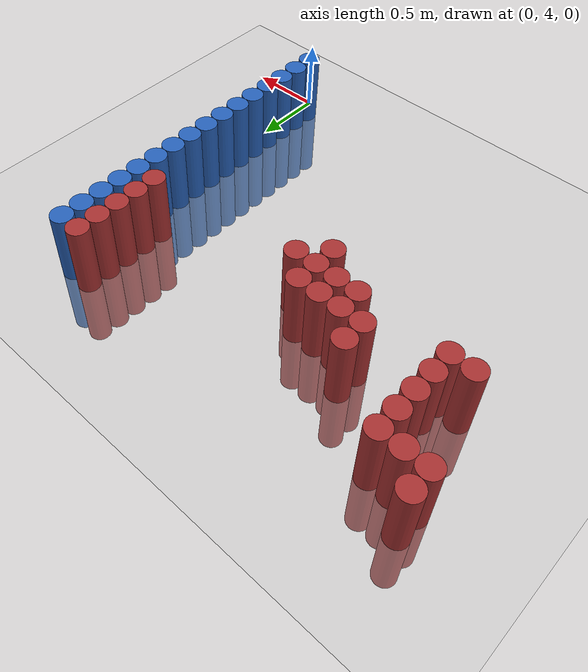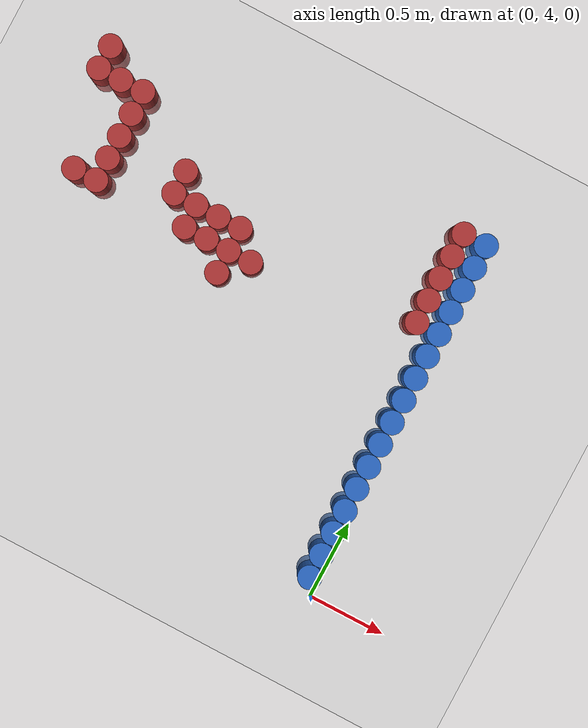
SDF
<sdf version="1.6">
 <world name="default">
  <model name="ground_plane">
   <static>1</static>
   <link name="link">
    <collision name="collision">
     <geometry><plane><normal>0 0 1</normal><size>100 100</size></plane></geometry>
     <surface><friction><ode><mu>100</mu><mu2>50</mu2></ode></friction></surface>
    </collision>
    <visual name="visual">
     <cast_shadows>0</cast_shadows>
     <geometry><plane><normal>0 0 1</normal><size>100 100</size></plane></geometry>
     <material>
      <script><uri>file://media/materials/scripts/gazebo.material</uri><name>Gazebo/Grey</name></script>
     </material>
    </visual>
   </link>
  </model>
  <model name="unit_cylinder_82">
   <static>1</static>
   <pose>-0.075000 4.125000 0.000000 0.000000 0.000000 0.000000</pose>
   <link name="link">
    <inertial>
     <mass>1</mass>
     <inertia><ixx>0.145833</ixx><ixy>0</ixy><ixz>0</ixz><iyy>0.145833</iyy><iyz>0</iyz><izz>0.125</izz></inertia>
    </inertial>
    <collision name="collision">
     <geometry><cylinder><radius>0.075000</radius><length>1</length></cylinder></geometry>
    </collision>
    <visual name="visual">
     <geometry><cylinder><radius>0.075000</radius><length>1</length></cylinder></geometry>
     <material>
      <ambient>0.152000 0.379000 0.720000 1</ambient>
      <diffuse>0.152000 0.379000 0.720000 1</diffuse>
     </material>
     <material>
      <script><name>Gazebo/Grey</name><uri>file://media/materials/scripts/gazebo.material</uri></script>
     </material>
    </visual>
    <sensor name="sensor_contact" type="contact"><contact><collision>collision</collision></contact></sensor>
   </link>
   <plugin filename="gz-sim-touchplugin-system" name="gz::sim::systems::TouchPlugin">
    <target>robot</target>
    <namespace>robot</namespace>
    <time>0.001</time>
    <enabled>true</enabled>
   </plugin>
  </model>
  <model name="unit_cylinder_84">
   <static>1</static>
   <pose>-0.075000 4.275000 0.000000 0.000000 0.000000 0.000000</pose>
   <link name="link">
    <inertial>
     <mass>1</mass>
     <inertia><ixx>0.145833</ixx><ixy>0</ixy><ixz>0</ixz><iyy>0.145833</iyy><iyz>0</iyz><izz>0.125</izz></inertia>
    </inertial>
    <collision name="collision">
     <geometry><cylinder><radius>0.075000</radius><length>1</length></cylinder></geometry>
    </collision>
    <visual name="visual">
     <geometry><cylinder><radius>0.075000</radius><length>1</length></cylinder></geometry>
     <material>
      <ambient>0.152000 0.379000 0.720000 1</ambient>
      <diffuse>0.152000 0.379000 0.720000 1</diffuse>
     </material>
     <material>
      <script><name>Gazebo/Grey</name><uri>file://media/materials/scripts/gazebo.material</uri></script>
     </material>
    </visual>
    <sensor name="sensor_contact" type="contact"><contact><collision>collision</collision></contact></sensor>
   </link>
   <plugin filename="gz-sim-touchplugin-system" name="gz::sim::systems::TouchPlugin">
    <target>robot</target>
    <namespace>robot</namespace>
    <time>0.001</time>
    <enabled>true</enabled>
   </plugin>
  </model>
  <model name="unit_cylinder_86">
   <static>1</static>
   <pose>-0.075000 4.425000 0.000000 0.000000 0.000000 0.000000</pose>
   <link name="link">
    <inertial>
     <mass>1</mass>
     <inertia><ixx>0.145833</ixx><ixy>0</ixy><ixz>0</ixz><iyy>0.145833</iyy><iyz>0</iyz><izz>0.125</izz></inertia>
    </inertial>
    <collision name="collision">
     <geometry><cylinder><radius>0.075000</radius><length>1</length></cylinder></geometry>
    </collision>
    <visual name="visual">
     <geometry><cylinder><radius>0.075000</radius><length>1</length></cylinder></geometry>
     <material>
      <ambient>0.152000 0.379000 0.720000 1</ambient>
      <diffuse>0.152000 0.379000 0.720000 1</diffuse>
     </material>
     <material>
      <script><name>Gazebo/Grey</name><uri>file://media/materials/scripts/gazebo.material</uri></script>
     </material>
    </visual>
    <sensor name="sensor_contact" type="contact"><contact><collision>collision</collision></contact></sensor>
   </link>
   <plugin filename="gz-sim-touchplugin-system" name="gz::sim::systems::TouchPlugin">
    <target>robot</target>
    <namespace>robot</namespace>
    <time>0.001</time>
    <enabled>true</enabled>
   </plugin>
  </model>
  <model name="unit_cylinder_88">
   <static>1</static>
   <pose>-0.075000 4.575000 0.000000 0.000000 0.000000 0.000000</pose>
   <link name="link">
    <inertial>
     <mass>1</mass>
     <inertia><ixx>0.145833</ixx><ixy>0</ixy><ixz>0</ixz><iyy>0.145833</iyy><iyz>0</iyz><izz>0.125</izz></inertia>
    </inertial>
    <collision name="collision">
     <geometry><cylinder><radius>0.075000</radius><length>1</length></cylinder></geometry>
    </collision>
    <visual name="visual">
     <geometry><cylinder><radius>0.075000</radius><length>1</length></cylinder></geometry>
     <material>
      <ambient>0.152000 0.379000 0.720000 1</ambient>
      <diffuse>0.152000 0.379000 0.720000 1</diffuse>
     </material>
     <material>
      <script><name>Gazebo/Grey</name><uri>file://media/materials/scripts/gazebo.material</uri></script>
     </material>
    </visual>
    <sensor name="sensor_contact" type="contact"><contact><collision>collision</collision></contact></sensor>
   </link>
   <plugin filename="gz-sim-touchplugin-system" name="gz::sim::systems::TouchPlugin">
    <target>robot</target>
    <namespace>robot</namespace>
    <time>0.001</time>
    <enabled>true</enabled>
   </plugin>
  </model>
  <model name="unit_cylinder_90">
   <static>1</static>
   <pose>-0.075000 4.725000 0.000000 0.000000 0.000000 0.000000</pose>
   <link name="link">
    <inertial>
     <mass>1</mass>
     <inertia><ixx>0.145833</ixx><ixy>0</ixy><ixz>0</ixz><iyy>0.145833</iyy><iyz>0</iyz><izz>0.125</izz></inertia>
    </inertial>
    <collision name="collision">
     <geometry><cylinder><radius>0.075000</radius><length>1</length></cylinder></geometry>
    </collision>
    <visual name="visual">
     <geometry><cylinder><radius>0.075000</radius><length>1</length></cylinder></geometry>
     <material>
      <ambient>0.152000 0.379000 0.720000 1</ambient>
      <diffuse>0.152000 0.379000 0.720000 1</diffuse>
     </material>
     <material>
      <script><name>Gazebo/Grey</name><uri>file://media/materials/scripts/gazebo.material</uri></script>
     </material>
    </visual>
    <sensor name="sensor_contact" type="contact"><contact><collision>collision</collision></contact></sensor>
   </link>
   <plugin filename="gz-sim-touchplugin-system" name="gz::sim::systems::TouchPlugin">
    <target>robot</target>
    <namespace>robot</namespace>
    <time>0.001</time>
    <enabled>true</enabled>
   </plugin>
  </model>
  <model name="unit_cylinder_92">
   <static>1</static>
   <pose>-0.075000 4.875000 0.000000 0.000000 0.000000 0.000000</pose>
   <link name="link">
    <inertial>
     <mass>1</mass>
     <inertia><ixx>0.145833</ixx><ixy>0</ixy><ixz>0</ixz><iyy>0.145833</iyy><iyz>0</iyz><izz>0.125</izz></inertia>
    </inertial>
    <collision name="collision">
     <geometry><cylinder><radius>0.075000</radius><length>1</length></cylinder></geometry>
    </collision>
    <visual name="visual">
     <geometry><cylinder><radius>0.075000</radius><length>1</length></cylinder></geometry>
     <material>
      <ambient>0.152000 0.379000 0.720000 1</ambient>
      <diffuse>0.152000 0.379000 0.720000 1</diffuse>
     </material>
     <material>
      <script><name>Gazebo/Grey</name><uri>file://media/materials/scripts/gazebo.material</uri></script>
     </material>
    </visual>
    <sensor name="sensor_contact" type="contact"><contact><collision>collision</collision></contact></sensor>
   </link>
   <plugin filename="gz-sim-touchplugin-system" name="gz::sim::systems::TouchPlugin">
    <target>robot</target>
    <namespace>robot</namespace>
    <time>0.001</time>
    <enabled>true</enabled>
   </plugin>
  </model>
  <model name="unit_cylinder_94">
   <static>1</static>
   <pose>-0.075000 5.025000 0.000000 0.000000 0.000000 0.000000</pose>
   <link name="link">
    <inertial>
     <mass>1</mass>
     <inertia><ixx>0.145833</ixx><ixy>0</ixy><ixz>0</ixz><iyy>0.145833</iyy><iyz>0</iyz><izz>0.125</izz></inertia>
    </inertial>
    <collision name="collision">
     <geometry><cylinder><radius>0.075000</radius><length>1</length></cylinder></geometry>
    </collision>
    <visual name="visual">
     <geometry><cylinder><radius>0.075000</radius><length>1</length></cylinder></geometry>
     <material>
      <ambient>0.152000 0.379000 0.720000 1</ambient>
      <diffuse>0.152000 0.379000 0.720000 1</diffuse>
     </material>
     <material>
      <script><name>Gazebo/Grey</name><uri>file://media/materials/scripts/gazebo.material</uri></script>
     </material>
    </visual>
    <sensor name="sensor_contact" type="contact"><contact><collision>collision</collision></contact></sensor>
   </link>
   <plugin filename="gz-sim-touchplugin-system" name="gz::sim::systems::TouchPlugin">
    <target>robot</target>
    <namespace>robot</namespace>
    <time>0.001</time>
    <enabled>true</enabled>
   </plugin>
  </model>
  <model name="unit_cylinder_210">
   <static>1</static>
   <pose>-2.625000 6.225000 0.000000 0.000000 0.000000 0.000000</pose>
   <link name="link">
    <inertial>
     <mass>1</mass>
     <inertia><ixx>0.145833</ixx><ixy>0</ixy><ixz>0</ixz><iyy>0.145833</iyy><iyz>0</iyz><izz>0.125</izz></inertia>
    </inertial>
    <collision name="collision">
     <geometry><cylinder><radius>0.075000</radius><length>1</length></cylinder></geometry>
    </collision>
    <visual name="visual">
     <geometry><cylinder><radius>0.075000</radius><length>1</length></cylinder></geometry>
     <material>
      <ambient>0.648000 0.192000 0.192000 1</ambient>
      <diffuse>0.648000 0.192000 0.192000 1</diffuse>
     </material>
     <material>
      <script><name>Gazebo/Grey</name><uri>file://media/materials/scripts/gazebo.material</uri></script>
     </material>
    </visual>
    <sensor name="sensor_contact" type="contact"><contact><collision>collision</collision></contact></sensor>
   </link>
   <plugin filename="gz-sim-touchplugin-system" name="gz::sim::systems::TouchPlugin">
    <target>robot</target>
    <namespace>robot</namespace>
    <time>0.001</time>
    <enabled>true</enabled>
   </plugin>
  </model>
  <model name="unit_cylinder_211">
   <static>1</static>
   <pose>-2.625000 6.375000 0.000000 0.000000 0.000000 0.000000</pose>
   <link name="link">
    <inertial>
     <mass>1</mass>
     <inertia><ixx>0.145833</ixx><ixy>0</ixy><ixz>0</ixz><iyy>0.145833</iyy><iyz>0</iyz><izz>0.125</izz></inertia>
    </inertial>
    <collision name="collision">
     <geometry><cylinder><radius>0.075000</radius><length>1</length></cylinder></geometry>
    </collision>
    <visual name="visual">
     <geometry><cylinder><radius>0.075000</radius><length>1</length></cylinder></geometry>
     <material>
      <ambient>0.648000 0.192000 0.192000 1</ambient>
      <diffuse>0.648000 0.192000 0.192000 1</diffuse>
     </material>
     <material>
      <script><name>Gazebo/Grey</name><uri>file://media/materials/scripts/gazebo.material</uri></script>
     </material>
    </visual>
    <sensor name="sensor_contact" type="contact"><contact><collision>collision</collision></contact></sensor>
   </link>
   <plugin filename="gz-sim-touchplugin-system" name="gz::sim::systems::TouchPlugin">
    <target>robot</target>
    <namespace>robot</namespace>
    <time>0.001</time>
    <enabled>true</enabled>
   </plugin>
  </model>
  <model name="unit_cylinder_216">
   <static>1</static>
   <pose>-2.475000 5.625000 0.000000 0.000000 0.000000 0.000000</pose>
   <link name="link">
    <inertial>
     <mass>1</mass>
     <inertia><ixx>0.145833</ixx><ixy>0</ixy><ixz>0</ixz><iyy>0.145833</iyy><iyz>0</iyz><izz>0.125</izz></inertia>
    </inertial>
    <collision name="collision">
     <geometry><cylinder><radius>0.075000</radius><length>1</length></cylinder></geometry>
    </collision>
    <visual name="visual">
     <geometry><cylinder><radius>0.075000</radius><length>1</length></cylinder></geometry>
     <material>
      <ambient>0.648000 0.192000 0.192000 1</ambient>
      <diffuse>0.648000 0.192000 0.192000 1</diffuse>
     </material>
     <material>
      <script><name>Gazebo/Grey</name><uri>file://media/materials/scripts/gazebo.material</uri></script>
     </material>
    </visual>
    <sensor name="sensor_contact" type="contact"><contact><collision>collision</collision></contact></sensor>
   </link>
   <plugin filename="gz-sim-touchplugin-system" name="gz::sim::systems::TouchPlugin">
    <target>robot</target>
    <namespace>robot</namespace>
    <time>0.001</time>
    <enabled>true</enabled>
   </plugin>
  </model>
  <model name="unit_cylinder_217">
   <static>1</static>
   <pose>-2.475000 6.225000 0.000000 0.000000 0.000000 0.000000</pose>
   <link name="link">
    <inertial>
     <mass>1</mass>
     <inertia><ixx>0.145833</ixx><ixy>0</ixy><ixz>0</ixz><iyy>0.145833</iyy><iyz>0</iyz><izz>0.125</izz></inertia>
    </inertial>
    <collision name="collision">
     <geometry><cylinder><radius>0.075000</radius><length>1</length></cylinder></geometry>
    </collision>
    <visual name="visual">
     <geometry><cylinder><radius>0.075000</radius><length>1</length></cylinder></geometry>
     <material>
      <ambient>0.648000 0.192000 0.192000 1</ambient>
      <diffuse>0.648000 0.192000 0.192000 1</diffuse>
     </material>
     <material>
      <script><name>Gazebo/Grey</name><uri>file://media/materials/scripts/gazebo.material</uri></script>
     </material>
    </visual>
    <sensor name="sensor_contact" type="contact"><contact><collision>collision</collision></contact></sensor>
   </link>
   <plugin filename="gz-sim-touchplugin-system" name="gz::sim::systems::TouchPlugin">
    <target>robot</target>
    <namespace>robot</namespace>
    <time>0.001</time>
    <enabled>true</enabled>
   </plugin>
  </model>
  <model name="unit_cylinder_223">
   <static>1</static>
   <pose>-2.325000 5.625000 0.000000 0.000000 0.000000 0.000000</pose>
   <link name="link">
    <inertial>
     <mass>1</mass>
     <inertia><ixx>0.145833</ixx><ixy>0</ixy><ixz>0</ixz><iyy>0.145833</iyy><iyz>0</iyz><izz>0.125</izz></inertia>
    </inertial>
    <collision name="collision">
     <geometry><cylinder><radius>0.075000</radius><length>1</length></cylinder></geometry>
    </collision>
    <visual name="visual">
     <geometry><cylinder><radius>0.075000</radius><length>1</length></cylinder></geometry>
     <material>
      <ambient>0.648000 0.192000 0.192000 1</ambient>
      <diffuse>0.648000 0.192000 0.192000 1</diffuse>
     </material>
     <material>
      <script><name>Gazebo/Grey</name><uri>file://media/materials/scripts/gazebo.material</uri></script>
     </material>
    </visual>
    <sensor name="sensor_contact" type="contact"><contact><collision>collision</collision></contact></sensor>
   </link>
   <plugin filename="gz-sim-touchplugin-system" name="gz::sim::systems::TouchPlugin">
    <target>robot</target>
    <namespace>robot</namespace>
    <time>0.001</time>
    <enabled>true</enabled>
   </plugin>
  </model>
  <model name="unit_cylinder_224">
   <static>1</static>
   <pose>-2.325000 5.775000 0.000000 0.000000 0.000000 0.000000</pose>
   <link name="link">
    <inertial>
     <mass>1</mass>
     <inertia><ixx>0.145833</ixx><ixy>0</ixy><ixz>0</ixz><iyy>0.145833</iyy><iyz>0</iyz><izz>0.125</izz></inertia>
    </inertial>
    <collision name="collision">
     <geometry><cylinder><radius>0.075000</radius><length>1</length></cylinder></geometry>
    </collision>
    <visual name="visual">
     <geometry><cylinder><radius>0.075000</radius><length>1</length></cylinder></geometry>
     <material>
      <ambient>0.648000 0.192000 0.192000 1</ambient>
      <diffuse>0.648000 0.192000 0.192000 1</diffuse>
     </material>
     <material>
      <script><name>Gazebo/Grey</name><uri>file://media/materials/scripts/gazebo.material</uri></script>
     </material>
    </visual>
    <sensor name="sensor_contact" type="contact"><contact><collision>collision</collision></contact></sensor>
   </link>
   <plugin filename="gz-sim-touchplugin-system" name="gz::sim::systems::TouchPlugin">
    <target>robot</target>
    <namespace>robot</namespace>
    <time>0.001</time>
    <enabled>true</enabled>
   </plugin>
  </model>
  <model name="unit_cylinder_225">
   <static>1</static>
   <pose>-2.325000 5.925000 0.000000 0.000000 0.000000 0.000000</pose>
   <link name="link">
    <inertial>
     <mass>1</mass>
     <inertia><ixx>0.145833</ixx><ixy>0</ixy><ixz>0</ixz><iyy>0.145833</iyy><iyz>0</iyz><izz>0.125</izz></inertia>
    </inertial>
    <collision name="collision">
     <geometry><cylinder><radius>0.075000</radius><length>1</length></cylinder></geometry>
    </collision>
    <visual name="visual">
     <geometry><cylinder><radius>0.075000</radius><length>1</length></cylinder></geometry>
     <material>
      <ambient>0.648000 0.192000 0.192000 1</ambient>
      <diffuse>0.648000 0.192000 0.192000 1</diffuse>
     </material>
     <material>
      <script><name>Gazebo/Grey</name><uri>file://media/materials/scripts/gazebo.material</uri></script>
     </material>
    </visual>
    <sensor name="sensor_contact" type="contact"><contact><collision>collision</collision></contact></sensor>
   </link>
   <plugin filename="gz-sim-touchplugin-system" name="gz::sim::systems::TouchPlugin">
    <target>robot</target>
    <namespace>robot</namespace>
    <time>0.001</time>
    <enabled>true</enabled>
   </plugin>
  </model>
  <model name="unit_cylinder_226">
   <static>1</static>
   <pose>-2.325000 6.075000 0.000000 0.000000 0.000000 0.000000</pose>
   <link name="link">
    <inertial>
     <mass>1</mass>
     <inertia><ixx>0.145833</ixx><ixy>0</ixy><ixz>0</ixz><iyy>0.145833</iyy><iyz>0</iyz><izz>0.125</izz></inertia>
    </inertial>
    <collision name="collision">
     <geometry><cylinder><radius>0.075000</radius><length>1</length></cylinder></geometry>
    </collision>
    <visual name="visual">
     <geometry><cylinder><radius>0.075000</radius><length>1</length></cylinder></geometry>
     <material>
      <ambient>0.648000 0.192000 0.192000 1</ambient>
      <diffuse>0.648000 0.192000 0.192000 1</diffuse>
     </material>
     <material>
      <script><name>Gazebo/Grey</name><uri>file://media/materials/scripts/gazebo.material</uri></script>
     </material>
    </visual>
    <sensor name="sensor_contact" type="contact"><contact><collision>collision</collision></contact></sensor>
   </link>
   <plugin filename="gz-sim-touchplugin-system" name="gz::sim::systems::TouchPlugin">
    <target>robot</target>
    <namespace>robot</namespace>
    <time>0.001</time>
    <enabled>true</enabled>
   </plugin>
  </model>
  <model name="unit_cylinder_227">
   <static>1</static>
   <pose>-2.325000 6.225000 0.000000 0.000000 0.000000 0.000000</pose>
   <link name="link">
    <inertial>
     <mass>1</mass>
     <inertia><ixx>0.145833</ixx><ixy>0</ixy><ixz>0</ixz><iyy>0.145833</iyy><iyz>0</iyz><izz>0.125</izz></inertia>
    </inertial>
    <collision name="collision">
     <geometry><cylinder><radius>0.075000</radius><length>1</length></cylinder></geometry>
    </collision>
    <visual name="visual">
     <geometry><cylinder><radius>0.075000</radius><length>1</length></cylinder></geometry>
     <material>
      <ambient>0.648000 0.192000 0.192000 1</ambient>
      <diffuse>0.648000 0.192000 0.192000 1</diffuse>
     </material>
     <material>
      <script><name>Gazebo/Grey</name><uri>file://media/materials/scripts/gazebo.material</uri></script>
     </material>
    </visual>
    <sensor name="sensor_contact" type="contact"><contact><collision>collision</collision></contact></sensor>
   </link>
   <plugin filename="gz-sim-touchplugin-system" name="gz::sim::systems::TouchPlugin">
    <target>robot</target>
    <namespace>robot</namespace>
    <time>0.001</time>
    <enabled>true</enabled>
   </plugin>
  </model>
  <model name="unit_cylinder_237">
   <static>1</static>
   <pose>-1.875000 5.775000 0.000000 0.000000 0.000000 0.000000</pose>
   <link name="link">
    <inertial>
     <mass>1</mass>
     <inertia><ixx>0.145833</ixx><ixy>0</ixy><ixz>0</ixz><iyy>0.145833</iyy><iyz>0</iyz><izz>0.125</izz></inertia>
    </inertial>
    <collision name="collision">
     <geometry><cylinder><radius>0.075000</radius><length>1</length></cylinder></geometry>
    </collision>
    <visual name="visual">
     <geometry><cylinder><radius>0.075000</radius><length>1</length></cylinder></geometry>
     <material>
      <ambient>0.648000 0.192000 0.192000 1</ambient>
      <diffuse>0.648000 0.192000 0.192000 1</diffuse>
     </material>
     <material>
      <script><name>Gazebo/Grey</name><uri>file://media/materials/scripts/gazebo.material</uri></script>
     </material>
    </visual>
    <sensor name="sensor_contact" type="contact"><contact><collision>collision</collision></contact></sensor>
   </link>
   <plugin filename="gz-sim-touchplugin-system" name="gz::sim::systems::TouchPlugin">
    <target>robot</target>
    <namespace>robot</namespace>
    <time>0.001</time>
    <enabled>true</enabled>
   </plugin>
  </model>
  <model name="unit_cylinder_238">
   <static>1</static>
   <pose>-1.875000 5.925000 0.000000 0.000000 0.000000 0.000000</pose>
   <link name="link">
    <inertial>
     <mass>1</mass>
     <inertia><ixx>0.145833</ixx><ixy>0</ixy><ixz>0</ixz><iyy>0.145833</iyy><iyz>0</iyz><izz>0.125</izz></inertia>
    </inertial>
    <collision name="collision">
     <geometry><cylinder><radius>0.075000</radius><length>1</length></cylinder></geometry>
    </collision>
    <visual name="visual">
     <geometry><cylinder><radius>0.075000</radius><length>1</length></cylinder></geometry>
     <material>
      <ambient>0.648000 0.192000 0.192000 1</ambient>
      <diffuse>0.648000 0.192000 0.192000 1</diffuse>
     </material>
     <material>
      <script><name>Gazebo/Grey</name><uri>file://media/materials/scripts/gazebo.material</uri></script>
     </material>
    </visual>
    <sensor name="sensor_contact" type="contact"><contact><collision>collision</collision></contact></sensor>
   </link>
   <plugin filename="gz-sim-touchplugin-system" name="gz::sim::systems::TouchPlugin">
    <target>robot</target>
    <namespace>robot</namespace>
    <time>0.001</time>
    <enabled>true</enabled>
   </plugin>
  </model>
  <model name="unit_cylinder_240">
   <static>1</static>
   <pose>-1.725000 5.625000 0.000000 0.000000 0.000000 0.000000</pose>
   <link name="link">
    <inertial>
     <mass>1</mass>
     <inertia><ixx>0.145833</ixx><ixy>0</ixy><ixz>0</ixz><iyy>0.145833</iyy><iyz>0</iyz><izz>0.125</izz></inertia>
    </inertial>
    <collision name="collision">
     <geometry><cylinder><radius>0.075000</radius><length>1</length></cylinder></geometry>
    </collision>
    <visual name="visual">
     <geometry><cylinder><radius>0.075000</radius><length>1</length></cylinder></geometry>
     <material>
      <ambient>0.648000 0.192000 0.192000 1</ambient>
      <diffuse>0.648000 0.192000 0.192000 1</diffuse>
     </material>
     <material>
      <script><name>Gazebo/Grey</name><uri>file://media/materials/scripts/gazebo.material</uri></script>
     </material>
    </visual>
    <sensor name="sensor_contact" type="contact"><contact><collision>collision</collision></contact></sensor>
   </link>
   <plugin filename="gz-sim-touchplugin-system" name="gz::sim::systems::TouchPlugin">
    <target>robot</target>
    <namespace>robot</namespace>
    <time>0.001</time>
    <enabled>true</enabled>
   </plugin>
  </model>
  <model name="unit_cylinder_241">
   <static>1</static>
   <pose>-1.725000 5.775000 0.000000 0.000000 0.000000 0.000000</pose>
   <link name="link">
    <inertial>
     <mass>1</mass>
     <inertia><ixx>0.145833</ixx><ixy>0</ixy><ixz>0</ixz><iyy>0.145833</iyy><iyz>0</iyz><izz>0.125</izz></inertia>
    </inertial>
    <collision name="collision">
     <geometry><cylinder><radius>0.075000</radius><length>1</length></cylinder></geometry>
    </collision>
    <visual name="visual">
     <geometry><cylinder><radius>0.075000</radius><length>1</length></cylinder></geometry>
     <material>
      <ambient>0.648000 0.192000 0.192000 1</ambient>
      <diffuse>0.648000 0.192000 0.192000 1</diffuse>
     </material>
     <material>
      <script><name>Gazebo/Grey</name><uri>file://media/materials/scripts/gazebo.material</uri></script>
     </material>
    </visual>
    <sensor name="sensor_contact" type="contact"><contact><collision>collision</collision></contact></sensor>
   </link>
   <plugin filename="gz-sim-touchplugin-system" name="gz::sim::systems::TouchPlugin">
    <target>robot</target>
    <namespace>robot</namespace>
    <time>0.001</time>
    <enabled>true</enabled>
   </plugin>
  </model>
  <model name="unit_cylinder_246">
   <static>1</static>
   <pose>-1.575000 5.625000 0.000000 0.000000 0.000000 0.000000</pose>
   <link name="link">
    <inertial>
     <mass>1</mass>
     <inertia><ixx>0.145833</ixx><ixy>0</ixy><ixz>0</ixz><iyy>0.145833</iyy><iyz>0</iyz><izz>0.125</izz></inertia>
    </inertial>
    <collision name="collision">
     <geometry><cylinder><radius>0.075000</radius><length>1</length></cylinder></geometry>
    </collision>
    <visual name="visual">
     <geometry><cylinder><radius>0.075000</radius><length>1</length></cylinder></geometry>
     <material>
      <ambient>0.648000 0.192000 0.192000 1</ambient>
      <diffuse>0.648000 0.192000 0.192000 1</diffuse>
     </material>
     <material>
      <script><name>Gazebo/Grey</name><uri>file://media/materials/scripts/gazebo.material</uri></script>
     </material>
    </visual>
    <sensor name="sensor_contact" type="contact"><contact><collision>collision</collision></contact></sensor>
   </link>
   <plugin filename="gz-sim-touchplugin-system" name="gz::sim::systems::TouchPlugin">
    <target>robot</target>
    <namespace>robot</namespace>
    <time>0.001</time>
    <enabled>true</enabled>
   </plugin>
  </model>
  <model name="unit_cylinder_247">
   <static>1</static>
   <pose>-1.575000 5.775000 0.000000 0.000000 0.000000 0.000000</pose>
   <link name="link">
    <inertial>
     <mass>1</mass>
     <inertia><ixx>0.145833</ixx><ixy>0</ixy><ixz>0</ixz><iyy>0.145833</iyy><iyz>0</iyz><izz>0.125</izz></inertia>
    </inertial>
    <collision name="collision">
     <geometry><cylinder><radius>0.075000</radius><length>1</length></cylinder></geometry>
    </collision>
    <visual name="visual">
     <geometry><cylinder><radius>0.075000</radius><length>1</length></cylinder></geometry>
     <material>
      <ambient>0.648000 0.192000 0.192000 1</ambient>
      <diffuse>0.648000 0.192000 0.192000 1</diffuse>
     </material>
     <material>
      <script><name>Gazebo/Grey</name><uri>file://media/materials/scripts/gazebo.material</uri></script>
     </material>
    </visual>
    <sensor name="sensor_contact" type="contact"><contact><collision>collision</collision></contact></sensor>
   </link>
   <plugin filename="gz-sim-touchplugin-system" name="gz::sim::systems::TouchPlugin">
    <target>robot</target>
    <namespace>robot</namespace>
    <time>0.001</time>
    <enabled>true</enabled>
   </plugin>
  </model>
  <model name="unit_cylinder_251">
   <static>1</static>
   <pose>-1.425000 5.475000 0.000000 0.000000 0.000000 0.000000</pose>
   <link name="link">
    <inertial>
     <mass>1</mass>
     <inertia><ixx>0.145833</ixx><ixy>0</ixy><ixz>0</ixz><iyy>0.145833</iyy><iyz>0</iyz><izz>0.125</izz></inertia>
    </inertial>
    <collision name="collision">
     <geometry><cylinder><radius>0.075000</radius><length>1</length></cylinder></geometry>
    </collision>
    <visual name="visual">
     <geometry><cylinder><radius>0.075000</radius><length>1</length></cylinder></geometry>
     <material>
      <ambient>0.648000 0.192000 0.192000 1</ambient>
      <diffuse>0.648000 0.192000 0.192000 1</diffuse>
     </material>
     <material>
      <script><name>Gazebo/Grey</name><uri>file://media/materials/scripts/gazebo.material</uri></script>
     </material>
    </visual>
    <sensor name="sensor_contact" type="contact"><contact><collision>collision</collision></contact></sensor>
   </link>
   <plugin filename="gz-sim-touchplugin-system" name="gz::sim::systems::TouchPlugin">
    <target>robot</target>
    <namespace>robot</namespace>
    <time>0.001</time>
    <enabled>true</enabled>
   </plugin>
  </model>
  <model name="unit_cylinder_252">
   <static>1</static>
   <pose>-1.425000 5.625000 0.000000 0.000000 0.000000 0.000000</pose>
   <link name="link">
    <inertial>
     <mass>1</mass>
     <inertia><ixx>0.145833</ixx><ixy>0</ixy><ixz>0</ixz><iyy>0.145833</iyy><iyz>0</iyz><izz>0.125</izz></inertia>
    </inertial>
    <collision name="collision">
     <geometry><cylinder><radius>0.075000</radius><length>1</length></cylinder></geometry>
    </collision>
    <visual name="visual">
     <geometry><cylinder><radius>0.075000</radius><length>1</length></cylinder></geometry>
     <material>
      <ambient>0.648000 0.192000 0.192000 1</ambient>
      <diffuse>0.648000 0.192000 0.192000 1</diffuse>
     </material>
     <material>
      <script><name>Gazebo/Grey</name><uri>file://media/materials/scripts/gazebo.material</uri></script>
     </material>
    </visual>
    <sensor name="sensor_contact" type="contact"><contact><collision>collision</collision></contact></sensor>
   </link>
   <plugin filename="gz-sim-touchplugin-system" name="gz::sim::systems::TouchPlugin">
    <target>robot</target>
    <namespace>robot</namespace>
    <time>0.001</time>
    <enabled>true</enabled>
   </plugin>
  </model>
  <model name="unit_cylinder_253">
   <static>1</static>
   <pose>-1.425000 5.775000 0.000000 0.000000 0.000000 0.000000</pose>
   <link name="link">
    <inertial>
     <mass>1</mass>
     <inertia><ixx>0.145833</ixx><ixy>0</ixy><ixz>0</ixz><iyy>0.145833</iyy><iyz>0</iyz><izz>0.125</izz></inertia>
    </inertial>
    <collision name="collision">
     <geometry><cylinder><radius>0.075000</radius><length>1</length></cylinder></geometry>
    </collision>
    <visual name="visual">
     <geometry><cylinder><radius>0.075000</radius><length>1</length></cylinder></geometry>
     <material>
      <ambient>0.648000 0.192000 0.192000 1</ambient>
      <diffuse>0.648000 0.192000 0.192000 1</diffuse>
     </material>
     <material>
      <script><name>Gazebo/Grey</name><uri>file://media/materials/scripts/gazebo.material</uri></script>
     </material>
    </visual>
    <sensor name="sensor_contact" type="contact"><contact><collision>collision</collision></contact></sensor>
   </link>
   <plugin filename="gz-sim-touchplugin-system" name="gz::sim::systems::TouchPlugin">
    <target>robot</target>
    <namespace>robot</namespace>
    <time>0.001</time>
    <enabled>true</enabled>
   </plugin>
  </model>
  <model name="unit_cylinder_257">
   <static>1</static>
   <pose>-1.275000 5.625000 0.000000 0.000000 0.000000 0.000000</pose>
   <link name="link">
    <inertial>
     <mass>1</mass>
     <inertia><ixx>0.145833</ixx><ixy>0</ixy><ixz>0</ixz><iyy>0.145833</iyy><iyz>0</iyz><izz>0.125</izz></inertia>
    </inertial>
    <collision name="collision">
     <geometry><cylinder><radius>0.075000</radius><length>1</length></cylinder></geometry>
    </collision>
    <visual name="visual">
     <geometry><cylinder><radius>0.075000</radius><length>1</length></cylinder></geometry>
     <material>
      <ambient>0.648000 0.192000 0.192000 1</ambient>
      <diffuse>0.648000 0.192000 0.192000 1</diffuse>
     </material>
     <material>
      <script><name>Gazebo/Grey</name><uri>file://media/materials/scripts/gazebo.material</uri></script>
     </material>
    </visual>
    <sensor name="sensor_contact" type="contact"><contact><collision>collision</collision></contact></sensor>
   </link>
   <plugin filename="gz-sim-touchplugin-system" name="gz::sim::systems::TouchPlugin">
    <target>robot</target>
    <namespace>robot</namespace>
    <time>0.001</time>
    <enabled>true</enabled>
   </plugin>
  </model>
  <model name="unit_cylinder_276">
   <static>1</static>
   <pose>-0.225000 5.775000 0.000000 0.000000 0.000000 0.000000</pose>
   <link name="link">
    <inertial>
     <mass>1</mass>
     <inertia><ixx>0.145833</ixx><ixy>0</ixy><ixz>0</ixz><iyy>0.145833</iyy><iyz>0</iyz><izz>0.125</izz></inertia>
    </inertial>
    <collision name="collision">
     <geometry><cylinder><radius>0.075000</radius><length>1</length></cylinder></geometry>
    </collision>
    <visual name="visual">
     <geometry><cylinder><radius>0.075000</radius><length>1</length></cylinder></geometry>
     <material>
      <ambient>0.648000 0.192000 0.192000 1</ambient>
      <diffuse>0.648000 0.192000 0.192000 1</diffuse>
     </material>
     <material>
      <script><name>Gazebo/Grey</name><uri>file://media/materials/scripts/gazebo.material</uri></script>
     </material>
    </visual>
    <sensor name="sensor_contact" type="contact"><contact><collision>collision</collision></contact></sensor>
   </link>
   <plugin filename="gz-sim-touchplugin-system" name="gz::sim::systems::TouchPlugin">
    <target>robot</target>
    <namespace>robot</namespace>
    <time>0.001</time>
    <enabled>true</enabled>
   </plugin>
  </model>
  <model name="unit_cylinder_277">
   <static>1</static>
   <pose>-0.225000 5.925000 0.000000 0.000000 0.000000 0.000000</pose>
   <link name="link">
    <inertial>
     <mass>1</mass>
     <inertia><ixx>0.145833</ixx><ixy>0</ixy><ixz>0</ixz><iyy>0.145833</iyy><iyz>0</iyz><izz>0.125</izz></inertia>
    </inertial>
    <collision name="collision">
     <geometry><cylinder><radius>0.075000</radius><length>1</length></cylinder></geometry>
    </collision>
    <visual name="visual">
     <geometry><cylinder><radius>0.075000</radius><length>1</length></cylinder></geometry>
     <material>
      <ambient>0.648000 0.192000 0.192000 1</ambient>
      <diffuse>0.648000 0.192000 0.192000 1</diffuse>
     </material>
     <material>
      <script><name>Gazebo/Grey</name><uri>file://media/materials/scripts/gazebo.material</uri></script>
     </material>
    </visual>
    <sensor name="sensor_contact" type="contact"><contact><collision>collision</collision></contact></sensor>
   </link>
   <plugin filename="gz-sim-touchplugin-system" name="gz::sim::systems::TouchPlugin">
    <target>robot</target>
    <namespace>robot</namespace>
    <time>0.001</time>
    <enabled>true</enabled>
   </plugin>
  </model>
  <model name="unit_cylinder_278">
   <static>1</static>
   <pose>-0.225000 6.075000 0.000000 0.000000 0.000000 0.000000</pose>
   <link name="link">
    <inertial>
     <mass>1</mass>
     <inertia><ixx>0.145833</ixx><ixy>0</ixy><ixz>0</ixz><iyy>0.145833</iyy><iyz>0</iyz><izz>0.125</izz></inertia>
    </inertial>
    <collision name="collision">
     <geometry><cylinder><radius>0.075000</radius><length>1</length></cylinder></geometry>
    </collision>
    <visual name="visual">
     <geometry><cylinder><radius>0.075000</radius><length>1</length></cylinder></geometry>
     <material>
      <ambient>0.648000 0.192000 0.192000 1</ambient>
      <diffuse>0.648000 0.192000 0.192000 1</diffuse>
     </material>
     <material>
      <script><name>Gazebo/Grey</name><uri>file://media/materials/scripts/gazebo.material</uri></script>
     </material>
    </visual>
    <sensor name="sensor_contact" type="contact"><contact><collision>collision</collision></contact></sensor>
   </link>
   <plugin filename="gz-sim-touchplugin-system" name="gz::sim::systems::TouchPlugin">
    <target>robot</target>
    <namespace>robot</namespace>
    <time>0.001</time>
    <enabled>true</enabled>
   </plugin>
  </model>
  <model name="unit_cylinder_279">
   <static>1</static>
   <pose>-0.225000 6.225000 0.000000 0.000000 0.000000 0.000000</pose>
   <link name="link">
    <inertial>
     <mass>1</mass>
     <inertia><ixx>0.145833</ixx><ixy>0</ixy><ixz>0</ixz><iyy>0.145833</iyy><iyz>0</iyz><izz>0.125</izz></inertia>
    </inertial>
    <collision name="collision">
     <geometry><cylinder><radius>0.075000</radius><length>1</length></cylinder></geometry>
    </collision>
    <visual name="visual">
     <geometry><cylinder><radius>0.075000</radius><length>1</length></cylinder></geometry>
     <material>
      <ambient>0.648000 0.192000 0.192000 1</ambient>
      <diffuse>0.648000 0.192000 0.192000 1</diffuse>
     </material>
     <material>
      <script><name>Gazebo/Grey</name><uri>file://media/materials/scripts/gazebo.material</uri></script>
     </material>
    </visual>
    <sensor name="sensor_contact" type="contact"><contact><collision>collision</collision></contact></sensor>
   </link>
   <plugin filename="gz-sim-touchplugin-system" name="gz::sim::systems::TouchPlugin">
    <target>robot</target>
    <namespace>robot</namespace>
    <time>0.001</time>
    <enabled>true</enabled>
   </plugin>
  </model>
  <model name="unit_cylinder_280">
   <static>1</static>
   <pose>-0.225000 6.375000 0.000000 0.000000 0.000000 0.000000</pose>
   <link name="link">
    <inertial>
     <mass>1</mass>
     <inertia><ixx>0.145833</ixx><ixy>0</ixy><ixz>0</ixz><iyy>0.145833</iyy><iyz>0</iyz><izz>0.125</izz></inertia>
    </inertial>
    <collision name="collision">
     <geometry><cylinder><radius>0.075000</radius><length>1</length></cylinder></geometry>
    </collision>
    <visual name="visual">
     <geometry><cylinder><radius>0.075000</radius><length>1</length></cylinder></geometry>
     <material>
      <ambient>0.648000 0.192000 0.192000 1</ambient>
      <diffuse>0.648000 0.192000 0.192000 1</diffuse>
     </material>
     <material>
      <script><name>Gazebo/Grey</name><uri>file://media/materials/scripts/gazebo.material</uri></script>
     </material>
    </visual>
    <sensor name="sensor_contact" type="contact"><contact><collision>collision</collision></contact></sensor>
   </link>
   <plugin filename="gz-sim-touchplugin-system" name="gz::sim::systems::TouchPlugin">
    <target>robot</target>
    <namespace>robot</namespace>
    <time>0.001</time>
    <enabled>true</enabled>
   </plugin>
  </model>
  <model name="unit_cylinder_294">
   <static>1</static>
   <pose>-0.075000 5.175000 0.000000 0.000000 0.000000 0.000000</pose>
   <link name="link">
    <inertial>
     <mass>1</mass>
     <inertia><ixx>0.145833</ixx><ixy>0</ixy><ixz>0</ixz><iyy>0.145833</iyy><iyz>0</iyz><izz>0.125</izz></inertia>
    </inertial>
    <collision name="collision">
     <geometry><cylinder><radius>0.075000</radius><length>1</length></cylinder></geometry>
    </collision>
    <visual name="visual">
     <geometry><cylinder><radius>0.075000</radius><length>1</length></cylinder></geometry>
     <material>
      <ambient>0.152000 0.379000 0.720000 1</ambient>
      <diffuse>0.152000 0.379000 0.720000 1</diffuse>
     </material>
     <material>
      <script><name>Gazebo/Grey</name><uri>file://media/materials/scripts/gazebo.material</uri></script>
     </material>
    </visual>
    <sensor name="sensor_contact" type="contact"><contact><collision>collision</collision></contact></sensor>
   </link>
   <plugin filename="gz-sim-touchplugin-system" name="gz::sim::systems::TouchPlugin">
    <target>robot</target>
    <namespace>robot</namespace>
    <time>0.001</time>
    <enabled>true</enabled>
   </plugin>
  </model>
  <model name="unit_cylinder_295">
   <static>1</static>
   <pose>-0.075000 5.325000 0.000000 0.000000 0.000000 0.000000</pose>
   <link name="link">
    <inertial>
     <mass>1</mass>
     <inertia><ixx>0.145833</ixx><ixy>0</ixy><ixz>0</ixz><iyy>0.145833</iyy><iyz>0</iyz><izz>0.125</izz></inertia>
    </inertial>
    <collision name="collision">
     <geometry><cylinder><radius>0.075000</radius><length>1</length></cylinder></geometry>
    </collision>
    <visual name="visual">
     <geometry><cylinder><radius>0.075000</radius><length>1</length></cylinder></geometry>
     <material>
      <ambient>0.152000 0.379000 0.720000 1</ambient>
      <diffuse>0.152000 0.379000 0.720000 1</diffuse>
     </material>
     <material>
      <script><name>Gazebo/Grey</name><uri>file://media/materials/scripts/gazebo.material</uri></script>
     </material>
    </visual>
    <sensor name="sensor_contact" type="contact"><contact><collision>collision</collision></contact></sensor>
   </link>
   <plugin filename="gz-sim-touchplugin-system" name="gz::sim::systems::TouchPlugin">
    <target>robot</target>
    <namespace>robot</namespace>
    <time>0.001</time>
    <enabled>true</enabled>
   </plugin>
  </model>
  <model name="unit_cylinder_296">
   <static>1</static>
   <pose>-0.075000 5.475000 0.000000 0.000000 0.000000 0.000000</pose>
   <link name="link">
    <inertial>
     <mass>1</mass>
     <inertia><ixx>0.145833</ixx><ixy>0</ixy><ixz>0</ixz><iyy>0.145833</iyy><iyz>0</iyz><izz>0.125</izz></inertia>
    </inertial>
    <collision name="collision">
     <geometry><cylinder><radius>0.075000</radius><length>1</length></cylinder></geometry>
    </collision>
    <visual name="visual">
     <geometry><cylinder><radius>0.075000</radius><length>1</length></cylinder></geometry>
     <material>
      <ambient>0.152000 0.379000 0.720000 1</ambient>
      <diffuse>0.152000 0.379000 0.720000 1</diffuse>
     </material>
     <material>
      <script><name>Gazebo/Grey</name><uri>file://media/materials/scripts/gazebo.material</uri></script>
     </material>
    </visual>
    <sensor name="sensor_contact" type="contact"><contact><collision>collision</collision></contact></sensor>
   </link>
   <plugin filename="gz-sim-touchplugin-system" name="gz::sim::systems::TouchPlugin">
    <target>robot</target>
    <namespace>robot</namespace>
    <time>0.001</time>
    <enabled>true</enabled>
   </plugin>
  </model>
  <model name="unit_cylinder_297">
   <static>1</static>
   <pose>-0.075000 5.625000 0.000000 0.000000 0.000000 0.000000</pose>
   <link name="link">
    <inertial>
     <mass>1</mass>
     <inertia><ixx>0.145833</ixx><ixy>0</ixy><ixz>0</ixz><iyy>0.145833</iyy><iyz>0</iyz><izz>0.125</izz></inertia>
    </inertial>
    <collision name="collision">
     <geometry><cylinder><radius>0.075000</radius><length>1</length></cylinder></geometry>
    </collision>
    <visual name="visual">
     <geometry><cylinder><radius>0.075000</radius><length>1</length></cylinder></geometry>
     <material>
      <ambient>0.152000 0.379000 0.720000 1</ambient>
      <diffuse>0.152000 0.379000 0.720000 1</diffuse>
     </material>
     <material>
      <script><name>Gazebo/Grey</name><uri>file://media/materials/scripts/gazebo.material</uri></script>
     </material>
    </visual>
    <sensor name="sensor_contact" type="contact"><contact><collision>collision</collision></contact></sensor>
   </link>
   <plugin filename="gz-sim-touchplugin-system" name="gz::sim::systems::TouchPlugin">
    <target>robot</target>
    <namespace>robot</namespace>
    <time>0.001</time>
    <enabled>true</enabled>
   </plugin>
  </model>
  <model name="unit_cylinder_298">
   <static>1</static>
   <pose>-0.075000 5.775000 0.000000 0.000000 0.000000 0.000000</pose>
   <link name="link">
    <inertial>
     <mass>1</mass>
     <inertia><ixx>0.145833</ixx><ixy>0</ixy><ixz>0</ixz><iyy>0.145833</iyy><iyz>0</iyz><izz>0.125</izz></inertia>
    </inertial>
    <collision name="collision">
     <geometry><cylinder><radius>0.075000</radius><length>1</length></cylinder></geometry>
    </collision>
    <visual name="visual">
     <geometry><cylinder><radius>0.075000</radius><length>1</length></cylinder></geometry>
     <material>
      <ambient>0.152000 0.379000 0.720000 1</ambient>
      <diffuse>0.152000 0.379000 0.720000 1</diffuse>
     </material>
     <material>
      <script><name>Gazebo/Grey</name><uri>file://media/materials/scripts/gazebo.material</uri></script>
     </material>
    </visual>
    <sensor name="sensor_contact" type="contact"><contact><collision>collision</collision></contact></sensor>
   </link>
   <plugin filename="gz-sim-touchplugin-system" name="gz::sim::systems::TouchPlugin">
    <target>robot</target>
    <namespace>robot</namespace>
    <time>0.001</time>
    <enabled>true</enabled>
   </plugin>
  </model>
  <model name="unit_cylinder_299">
   <static>1</static>
   <pose>-0.075000 5.925000 0.000000 0.000000 0.000000 0.000000</pose>
   <link name="link">
    <inertial>
     <mass>1</mass>
     <inertia><ixx>0.145833</ixx><ixy>0</ixy><ixz>0</ixz><iyy>0.145833</iyy><iyz>0</iyz><izz>0.125</izz></inertia>
    </inertial>
    <collision name="collision">
     <geometry><cylinder><radius>0.075000</radius><length>1</length></cylinder></geometry>
    </collision>
    <visual name="visual">
     <geometry><cylinder><radius>0.075000</radius><length>1</length></cylinder></geometry>
     <material>
      <ambient>0.152000 0.379000 0.720000 1</ambient>
      <diffuse>0.152000 0.379000 0.720000 1</diffuse>
     </material>
     <material>
      <script><name>Gazebo/Grey</name><uri>file://media/materials/scripts/gazebo.material</uri></script>
     </material>
    </visual>
    <sensor name="sensor_contact" type="contact"><contact><collision>collision</collision></contact></sensor>
   </link>
   <plugin filename="gz-sim-touchplugin-system" name="gz::sim::systems::TouchPlugin">
    <target>robot</target>
    <namespace>robot</namespace>
    <time>0.001</time>
    <enabled>true</enabled>
   </plugin>
  </model>
  <model name="unit_cylinder_300">
   <static>1</static>
   <pose>-0.075000 6.075000 0.000000 0.000000 0.000000 0.000000</pose>
   <link name="link">
    <inertial>
     <mass>1</mass>
     <inertia><ixx>0.145833</ixx><ixy>0</ixy><ixz>0</ixz><iyy>0.145833</iyy><iyz>0</iyz><izz>0.125</izz></inertia>
    </inertial>
    <collision name="collision">
     <geometry><cylinder><radius>0.075000</radius><length>1</length></cylinder></geometry>
    </collision>
    <visual name="visual">
     <geometry><cylinder><radius>0.075000</radius><length>1</length></cylinder></geometry>
     <material>
      <ambient>0.152000 0.379000 0.720000 1</ambient>
      <diffuse>0.152000 0.379000 0.720000 1</diffuse>
     </material>
     <material>
      <script><name>Gazebo/Grey</name><uri>file://media/materials/scripts/gazebo.material</uri></script>
     </material>
    </visual>
    <sensor name="sensor_contact" type="contact"><contact><collision>collision</collision></contact></sensor>
   </link>
   <plugin filename="gz-sim-touchplugin-system" name="gz::sim::systems::TouchPlugin">
    <target>robot</target>
    <namespace>robot</namespace>
    <time>0.001</time>
    <enabled>true</enabled>
   </plugin>
  </model>
  <model name="unit_cylinder_301">
   <static>1</static>
   <pose>-0.075000 6.225000 0.000000 0.000000 0.000000 0.000000</pose>
   <link name="link">
    <inertial>
     <mass>1</mass>
     <inertia><ixx>0.145833</ixx><ixy>0</ixy><ixz>0</ixz><iyy>0.145833</iyy><iyz>0</iyz><izz>0.125</izz></inertia>
    </inertial>
    <collision name="collision">
     <geometry><cylinder><radius>0.075000</radius><length>1</length></cylinder></geometry>
    </collision>
    <visual name="visual">
     <geometry><cylinder><radius>0.075000</radius><length>1</length></cylinder></geometry>
     <material>
      <ambient>0.152000 0.379000 0.720000 1</ambient>
      <diffuse>0.152000 0.379000 0.720000 1</diffuse>
     </material>
     <material>
      <script><name>Gazebo/Grey</name><uri>file://media/materials/scripts/gazebo.material</uri></script>
     </material>
    </visual>
    <sensor name="sensor_contact" type="contact"><contact><collision>collision</collision></contact></sensor>
   </link>
   <plugin filename="gz-sim-touchplugin-system" name="gz::sim::systems::TouchPlugin">
    <target>robot</target>
    <namespace>robot</namespace>
    <time>0.001</time>
    <enabled>true</enabled>
   </plugin>
  </model>
  <model name="unit_cylinder_302">
   <static>1</static>
   <pose>-0.075000 6.375000 0.000000 0.000000 0.000000 0.000000</pose>
   <link name="link">
    <inertial>
     <mass>1</mass>
     <inertia><ixx>0.145833</ixx><ixy>0</ixy><ixz>0</ixz><iyy>0.145833</iyy><iyz>0</iyz><izz>0.125</izz></inertia>
    </inertial>
    <collision name="collision">
     <geometry><cylinder><radius>0.075000</radius><length>1</length></cylinder></geometry>
    </collision>
    <visual name="visual">
     <geometry><cylinder><radius>0.075000</radius><length>1</length></cylinder></geometry>
     <material>
      <ambient>0.152000 0.379000 0.720000 1</ambient>
      <diffuse>0.152000 0.379000 0.720000 1</diffuse>
     </material>
     <material>
      <script><name>Gazebo/Grey</name><uri>file://media/materials/scripts/gazebo.material</uri></script>
     </material>
    </visual>
    <sensor name="sensor_contact" type="contact"><contact><collision>collision</collision></contact></sensor>
   </link>
   <plugin filename="gz-sim-touchplugin-system" name="gz::sim::systems::TouchPlugin">
    <target>robot</target>
    <namespace>robot</namespace>
    <time>0.001</time>
    <enabled>true</enabled>
   </plugin>
  </model>
 </world>
</sdf>
